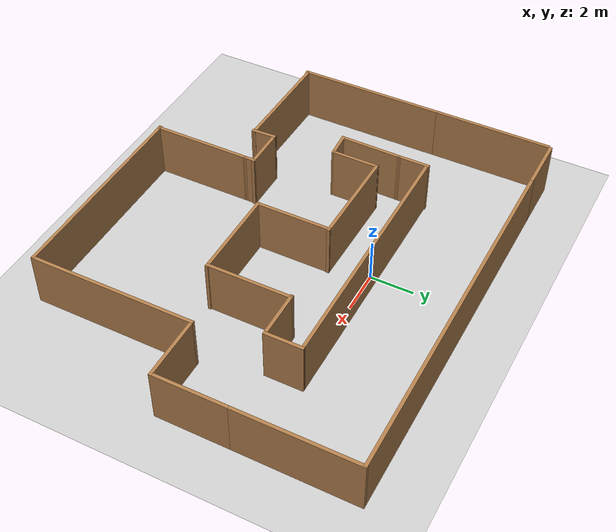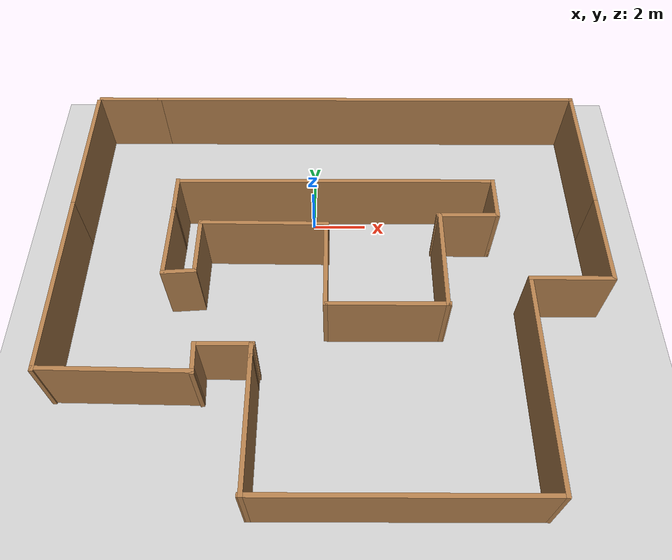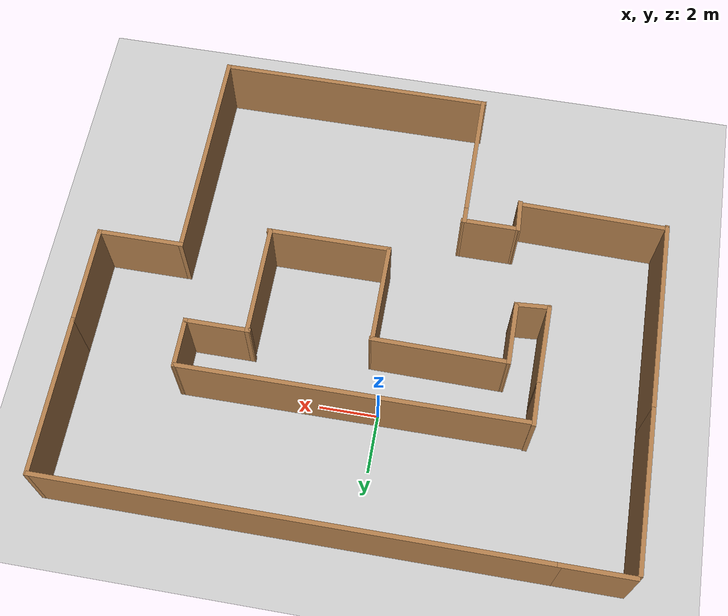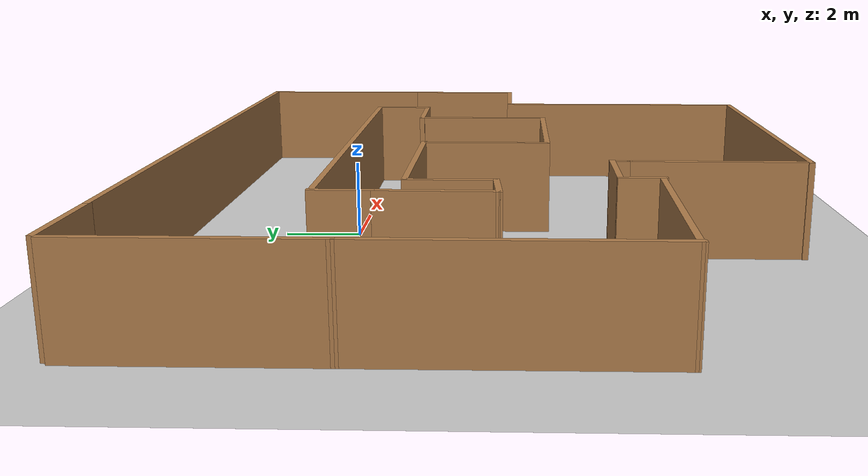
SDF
<sdf version="1.6">
 <world name="default">
  <light name="sun" type="directional">
   <pose>0 0 10 0 -0 0</pose>
   <diffuse>0.8 0.8 0.8 1</diffuse>
   <specular>0.2 0.2 0.2 1</specular>
   <attenuation>
    <range>1000</range>
    <constant>0.9</constant>
    <linear>0.01</linear>
    <quadratic>0.001</quadratic>
   </attenuation>
   <direction>-0.5 0.1 -0.9</direction>
  </light>
  <model name="ground_plane">
   <static>1</static>
   <link name="link">
    <collision name="collision">
     <geometry><plane><normal>0 0 1</normal><size>100 100</size></plane></geometry>
     <surface>
      <contact><collide_bitmask>65535</collide_bitmask></contact>
      <friction><ode><mu>100</mu><mu2>50</mu2></ode></friction>
     </surface>
    </collision>
    <visual name="visual">
     <cast_shadows>0</cast_shadows>
     <geometry><plane><normal>0 0 1</normal><size>100 100</size></plane></geometry>
     <material>
      <script><uri>file://media/materials/scripts/gazebo.material</uri><name>Gazebo/Grey</name></script>
     </material>
    </visual>
   </link>
  </model>
  <gravity>0 0 -9.8</gravity>
  <magnetic_field>6e-06 2.3e-05 -4.2e-05</magnetic_field>
  <atmosphere type="adiabatic"/>
  <physics name="default_physics" default="0" type="ode">
   <max_step_size>0.001</max_step_size>
   <real_time_factor>1</real_time_factor>
   <real_time_update_rate>1000</real_time_update_rate>
  </physics>
  <scene><ambient>0.4 0.4 0.4 1</ambient><background>0.7 0.7 0.7 1</background><shadows>1</shadows></scene>
  <spherical_coordinates>
   <surface_model>EARTH_WGS84</surface_model>
   <latitude_deg>0</latitude_deg>
   <longitude_deg>0</longitude_deg>
   <elevation>0</elevation>
   <heading_deg>0</heading_deg>
  </spherical_coordinates>
  <model name="maze.world">
   <pose>0.799782 -3.46001 0 0 -0 0</pose>
   <link name="Wall_1">
    <collision name="Wall_1_Collision">
     <geometry><box><size>6.84196 0.15 2.5</size></box></geometry>
     <pose>0 0 1.25 0 -0 0</pose>
    </collision>
    <visual name="Wall_1_Visual">
     <pose>0 0 1.25 0 -0 0</pose>
     <geometry><box><size>6.84196 0.15 2.5</size></box></geometry>
     <material>
      <script><uri>file://media/materials/scripts/gazebo.material</uri><name>Gazebo/Wood</name></script>
      <ambient>1 1 1 1</ambient>
     </material>
     <meta><layer>0</layer></meta>
    </visual>
    <pose>-9.53199 -0.763433 0 0 -0 -1.56839</pose>
   </link>
   <link name="Wall_10">
    <collision name="Wall_10_Collision">
     <geometry><box><size>7.60947 0.15 2.5</size></box></geometry>
     <pose>0 0 1.25 0 -0 0</pose>
    </collision>
    <visual name="Wall_10_Visual">
     <pose>0 0 1.25 0 -0 0</pose>
     <geometry><box><size>7.60947 0.15 2.5</size></box></geometry>
     <material>
      <script><uri>file://media/materials/scripts/gazebo.material</uri><name>Gazebo/Wood</name></script>
      <ambient>1 1 1 1</ambient>
     </material>
     <meta><layer>0</layer></meta>
    </visual>
    <pose>6.69022 -4.33965 0 0 -0 1.5708</pose>
   </link>
   <link name="Wall_11">
    <collision name="Wall_11_Collision">
     <geometry><box><size>3 0.15 2.5</size></box></geometry>
     <pose>0 0 1.25 0 -0 0</pose>
    </collision>
    <visual name="Wall_11_Visual">
     <pose>0 0 1.25 0 -0 0</pose>
     <geometry><box><size>3 0.15 2.5</size></box></geometry>
     <material>
      <script><uri>file://media/materials/scripts/gazebo.material</uri><name>Gazebo/Wood</name></script>
      <ambient>1 1 1 1</ambient>
     </material>
     <meta><layer>0</layer></meta>
    </visual>
    <pose>8.11522 -0.609985 0 0 -0 0</pose>
   </link>
   <link name="Wall_12">
    <collision name="Wall_12_Collision">
     <geometry><box><size>3.5 0.15 2.5</size></box></geometry>
     <pose>0 0 1.25 0 -0 0</pose>
    </collision>
    <visual name="Wall_12_Visual">
     <pose>0 0 1.25 0 -0 0</pose>
     <geometry><box><size>3.5 0.15 2.5</size></box></geometry>
     <material>
      <script><uri>file://media/materials/scripts/gazebo.material</uri><name>Gazebo/Wood</name></script>
      <ambient>1 1 1 1</ambient>
     </material>
     <meta><layer>0</layer></meta>
    </visual>
    <pose>9.54022 1.06502 0 0 -0 1.5708</pose>
   </link>
   <link name="Wall_14">
    <collision name="Wall_14_Collision">
     <geometry><box><size>5.47941 0.15 2.5</size></box></geometry>
     <pose>0 0 1.25 0 -0 0</pose>
    </collision>
    <visual name="Wall_14_Visual">
     <pose>0 0 1.25 0 -0 0</pose>
     <geometry><box><size>5.47941 0.15 2.5</size></box></geometry>
     <material>
      <script><uri>file://media/materials/scripts/gazebo.material</uri><name>Gazebo/Wood</name></script>
      <ambient>1 1 1 1</ambient>
     </material>
     <meta><layer>0</layer></meta>
    </visual>
    <pose>9.54022 5.40472 0 0 -0 1.5708</pose>
   </link>
   <link name="Wall_15">
    <collision name="Wall_15_Collision">
     <geometry><box><size>16.75 0.15 2.5</size></box></geometry>
     <pose>0 0 1.25 0 -0 0</pose>
    </collision>
    <visual name="Wall_15_Visual">
     <pose>0 0 1.25 0 -0 0</pose>
     <geometry><box><size>16.75 0.15 2.5</size></box></geometry>
     <material>
      <script><uri>file://media/materials/scripts/gazebo.material</uri><name>Gazebo/Wood</name></script>
      <ambient>1 1 1 1</ambient>
     </material>
     <meta><layer>0</layer></meta>
    </visual>
    <pose>1.19396 8.06943 0 0 -0 3.14159</pose>
   </link>
   <link name="Wall_18">
    <collision name="Wall_18_Collision">
     <geometry><box><size>2.89492 0.15 2.5</size></box></geometry>
     <pose>0 0 1.25 0 -0 0</pose>
    </collision>
    <visual name="Wall_18_Visual">
     <pose>0 0 1.25 0 -0 0</pose>
     <geometry><box><size>2.89492 0.15 2.5</size></box></geometry>
     <material>
      <script><uri>file://media/materials/scripts/gazebo.material</uri><name>Gazebo/Wood</name></script>
      <ambient>1 1 1 1</ambient>
     </material>
     <meta><layer>0</layer></meta>
    </visual>
    <pose>-5.86122 1.00719 0 0 -0 -1.58775</pose>
   </link>
   <link name="Wall_19">
    <collision name="Wall_19_Collision">
     <geometry><box><size>1.24161 0.15 2.5</size></box></geometry>
     <pose>0 0 1.25 0 -0 0</pose>
    </collision>
    <visual name="Wall_19_Visual">
     <pose>0 0 1.25 0 -0 0</pose>
     <geometry><box><size>1.24161 0.15 2.5</size></box></geometry>
     <material>
      <script><uri>file://media/materials/scripts/gazebo.material</uri><name>Gazebo/Wood</name></script>
      <ambient>1 1 1 1</ambient>
     </material>
     <meta><layer>0</layer></meta>
    </visual>
    <pose>-5.34003 -0.373254 0 0 -0 0.070302</pose>
   </link>
   <link name="Wall_2">
    <collision name="Wall_2_Collision">
     <geometry><box><size>5.21152 0.15 2.5</size></box></geometry>
     <pose>0 0 1.25 0 -0 0</pose>
    </collision>
    <visual name="Wall_2_Visual">
     <pose>0 0 1.25 0 -0 0</pose>
     <geometry><box><size>5.21152 0.15 2.5</size></box></geometry>
     <material>
      <script><uri>file://media/materials/scripts/gazebo.material</uri><name>Gazebo/Wood</name></script>
      <ambient>1 1 1 1</ambient>
     </material>
     <meta><layer>0</layer></meta>
    </visual>
    <pose>-6.9936 -4.10914 0 0 -0 -0.018281</pose>
   </link>
   <link name="Wall_20">
    <collision name="Wall_20_Collision">
     <geometry><box><size>2.1987 0.15 2.5</size></box></geometry>
     <pose>0 0 1.25 0 -0 0</pose>
    </collision>
    <visual name="Wall_20_Visual">
     <pose>0 0 1.25 0 -0 0</pose>
     <geometry><box><size>2.1987 0.15 2.5</size></box></geometry>
     <material>
      <script><uri>file://media/materials/scripts/gazebo.material</uri><name>Gazebo/Wood</name></script>
      <ambient>1 1 1 1</ambient>
     </material>
     <meta><layer>0</layer></meta>
    </visual>
    <pose>-4.79544 0.735959 0 0 -0 1.57067</pose>
   </link>
   <link name="Wall_21">
    <collision name="Wall_21_Collision">
     <geometry><box><size>4.633 0.15 2.5</size></box></geometry>
     <pose>0 0 1.25 0 -0 0</pose>
    </collision>
    <visual name="Wall_21_Visual">
     <pose>0 0 1.25 0 -0 0</pose>
     <geometry><box><size>4.633 0.15 2.5</size></box></geometry>
     <material>
      <script><uri>file://media/materials/scripts/gazebo.material</uri><name>Gazebo/Wood</name></script>
      <ambient>1 1 1 1</ambient>
     </material>
     <meta><layer>0</layer></meta>
    </visual>
    <pose>-2.50767 1.73718 0 0 -0 -0.010319</pose>
   </link>
   <link name="Wall_22">
    <collision name="Wall_22_Collision">
     <geometry><box><size>3.51171 0.15 2.5</size></box></geometry>
     <pose>0 0 1.25 0 -0 0</pose>
    </collision>
    <visual name="Wall_22_Visual">
     <pose>0 0 1.25 0 -0 0</pose>
     <geometry><box><size>3.51171 0.15 2.5</size></box></geometry>
     <material>
      <script><uri>file://media/materials/scripts/gazebo.material</uri><name>Gazebo/Wood</name></script>
      <ambient>1 1 1 1</ambient>
     </material>
     <meta><layer>0</layer></meta>
    </visual>
    <pose>-0.296705 0.033191 0 0 -0 -1.5708</pose>
   </link>
   <link name="Wall_23">
    <collision name="Wall_23_Collision">
     <geometry><box><size>4.25 0.15 2.5</size></box></geometry>
     <pose>0 0 1.25 0 -0 0</pose>
    </collision>
    <visual name="Wall_23_Visual">
     <pose>0 0 1.25 0 -0 0</pose>
     <geometry><box><size>4.25 0.15 2.5</size></box></geometry>
     <material>
      <script><uri>file://media/materials/scripts/gazebo.material</uri><name>Gazebo/Wood</name></script>
      <ambient>1 1 1 1</ambient>
     </material>
     <meta><layer>0</layer></meta>
    </visual>
    <pose>1.79956 -1.64766 0 0 -0 0</pose>
   </link>
   <link name="Wall_24">
    <collision name="Wall_24_Collision">
     <geometry><box><size>3.9173 0.15 2.5</size></box></geometry>
     <pose>0 0 1.25 0 -0 0</pose>
    </collision>
    <visual name="Wall_24_Visual">
     <pose>0 0 1.25 0 -0 0</pose>
     <geometry><box><size>3.9173 0.15 2.5</size></box></geometry>
     <material>
      <script><uri>file://media/materials/scripts/gazebo.material</uri><name>Gazebo/Wood</name></script>
      <ambient>1 1 1 1</ambient>
     </material>
     <meta><layer>0</layer></meta>
    </visual>
    <pose>3.80329 0.235985 0 0 -0 1.5708</pose>
   </link>
   <link name="Wall_25">
    <collision name="Wall_25_Collision">
     <geometry><box><size>2.23225 0.15 2.5</size></box></geometry>
     <pose>0 0 1.25 0 -0 0</pose>
    </collision>
    <visual name="Wall_25_Visual">
     <pose>0 0 1.25 0 -0 0</pose>
     <geometry><box><size>2.23225 0.15 2.5</size></box></geometry>
     <material>
      <script><uri>file://media/materials/scripts/gazebo.material</uri><name>Gazebo/Wood</name></script>
      <ambient>1 1 1 1</ambient>
     </material>
     <meta><layer>0</layer></meta>
    </visual>
    <pose>4.79816 2.11963 0 0 -0 0</pose>
   </link>
   <link name="Wall_26">
    <collision name="Wall_26_Collision">
     <geometry><box><size>1.75694 0.15 2.5</size></box></geometry>
     <pose>0 0 1.25 0 -0 0</pose>
    </collision>
    <visual name="Wall_26_Visual">
     <pose>0 0 1.25 0 -0 0</pose>
     <geometry><box><size>1.75694 0.15 2.5</size></box></geometry>
     <material>
      <script><uri>file://media/materials/scripts/gazebo.material</uri><name>Gazebo/Wood</name></script>
      <ambient>1 1 1 1</ambient>
     </material>
     <meta><layer>0</layer></meta>
    </visual>
    <pose>5.88555 2.9231 0 0 -0 1.5708</pose>
   </link>
   <link name="Wall_27">
    <collision name="Wall_27_Collision">
     <geometry><box><size>11.686 0.15 2.5</size></box></geometry>
     <pose>0 0 1.25 0 -0 0</pose>
    </collision>
    <visual name="Wall_27_Visual">
     <pose>0 0 1.25 0 -0 0</pose>
     <geometry><box><size>11.686 0.15 2.5</size></box></geometry>
     <material>
      <script><uri>file://media/materials/scripts/gazebo.material</uri><name>Gazebo/Wood</name></script>
      <ambient>1 1 1 1</ambient>
     </material>
     <meta><layer>0</layer></meta>
    </visual>
    <pose>0.071291 3.71136 0 0 -0 -3.13896</pose>
   </link>
   <link name="Wall_29">
    <collision name="Wall_29_Collision">
     <geometry><box><size>1.5 0.15 2.5</size></box></geometry>
     <pose>0 0 1.25 0 -0 0</pose>
    </collision>
    <visual name="Wall_29_Visual">
     <pose>0 0 1.25 0 -0 0</pose>
     <geometry><box><size>1.5 0.15 2.5</size></box></geometry>
     <material>
      <script><uri>file://media/materials/scripts/gazebo.material</uri><name>Gazebo/Wood</name></script>
      <ambient>1 1 1 1</ambient>
     </material>
     <meta><layer>0</layer></meta>
    </visual>
    <pose>-5.83796 3.05445 0 0 -0 1.5708</pose>
   </link>
   <link name="Wall_3">
    <collision name="Wall_3_Collision">
     <geometry><box><size>1.17225 0.15 2.5</size></box></geometry>
     <pose>0 0 1.25 0 -0 0</pose>
    </collision>
    <visual name="Wall_3_Visual">
     <pose>0 0 1.25 0 -0 0</pose>
     <geometry><box><size>1.17225 0.15 2.5</size></box></geometry>
     <material>
      <script><uri>file://media/materials/scripts/gazebo.material</uri><name>Gazebo/Wood</name></script>
      <ambient>1 1 1 1</ambient>
     </material>
     <meta><layer>0</layer></meta>
    </visual>
    <pose>-4.48665 -3.69134 0 0 -0 1.61658</pose>
   </link>
   <link name="Wall_31">
    <collision name="Wall_31_Collision">
     <geometry><box><size>5.5 0.15 2.5</size></box></geometry>
     <pose>0 0 1.25 0 -0 0</pose>
    </collision>
    <visual name="Wall_31_Visual">
     <pose>0 0 1.25 0 -0 0</pose>
     <geometry><box><size>5.5 0.15 2.5</size></box></geometry>
     <material>
      <script><uri>file://media/materials/scripts/gazebo.material</uri><name>Gazebo/Wood</name></script>
      <ambient>1 1 1 1</ambient>
     </material>
     <meta><layer>0</layer></meta>
    </visual>
    <pose>-9.54004 5.25754 0 0 -0 1.5708</pose>
   </link>
   <link name="Wall_33">
    <collision name="Wall_33_Collision">
     <geometry><box><size>2.5 0.15 2.5</size></box></geometry>
     <pose>0 0 1.25 0 -0 0</pose>
    </collision>
    <visual name="Wall_33_Visual">
     <pose>0 0 1.25 0 -0 0</pose>
     <geometry><box><size>2.5 0.15 2.5</size></box></geometry>
     <material>
      <script><uri>file://media/materials/scripts/gazebo.material</uri><name>Gazebo/Wood</name></script>
      <ambient>1 1 1 1</ambient>
     </material>
     <meta><layer>0</layer></meta>
    </visual>
    <pose>-8.28104 8.06943 0 0 -0 3.14159</pose>
   </link>
   <link name="Wall_4">
    <collision name="Wall_4_Collision">
     <geometry><box><size>2 0.15 2.5</size></box></geometry>
     <pose>0 0 1.25 0 -0 0</pose>
    </collision>
    <visual name="Wall_4_Visual">
     <pose>0 0 1.25 0 -0 0</pose>
     <geometry><box><size>2 0.15 2.5</size></box></geometry>
     <material>
      <script><uri>file://media/materials/scripts/gazebo.material</uri><name>Gazebo/Wood</name></script>
      <ambient>1 1 1 1</ambient>
     </material>
     <meta><layer>0</layer></meta>
    </visual>
    <pose>-3.53852 -3.18075 0 0 -0 0</pose>
   </link>
   <link name="Wall_6">
    <collision name="Wall_6_Collision">
     <geometry><box><size>0.579239 0.15 2.5</size></box></geometry>
     <pose>0 0 1.25 0 -0 0</pose>
    </collision>
    <visual name="Wall_6_Visual">
     <pose>0 0 1.25 0 -0 0</pose>
     <geometry><box><size>0.579239 0.15 2.5</size></box></geometry>
     <material>
      <script><uri>file://media/materials/scripts/gazebo.material</uri><name>Gazebo/Wood</name></script>
      <ambient>1 1 1 1</ambient>
     </material>
     <meta><layer>0</layer></meta>
    </visual>
    <pose>-2.65991 -3.39537 0 0 -0 -1.57018</pose>
   </link>
   <link name="Wall_8">
    <collision name="Wall_8_Collision">
     <geometry><box><size>4.60956 0.15 2.5</size></box></geometry>
     <pose>0 0 1.25 0 -0 0</pose>
    </collision>
    <visual name="Wall_8_Visual">
     <pose>0 0 1.25 0 -0 0</pose>
     <geometry><box><size>4.60956 0.15 2.5</size></box></geometry>
     <material>
      <script><uri>file://media/materials/scripts/gazebo.material</uri><name>Gazebo/Wood</name></script>
      <ambient>1 1 1 1</ambient>
     </material>
     <meta><layer>0</layer></meta>
    </visual>
    <pose>-2.65978 -5.83965 0 0 -0 -1.5708</pose>
   </link>
   <link name="Wall_9">
    <collision name="Wall_9_Collision">
     <geometry><box><size>9.5 0.15 2.5</size></box></geometry>
     <pose>0 0 1.25 0 -0 0</pose>
    </collision>
    <visual name="Wall_9_Visual">
     <pose>0 0 1.25 0 -0 0</pose>
     <geometry><box><size>9.5 0.15 2.5</size></box></geometry>
     <material>
      <script><uri>file://media/materials/scripts/gazebo.material</uri><name>Gazebo/Wood</name></script>
      <ambient>1 1 1 1</ambient>
     </material>
     <meta><layer>0</layer></meta>
    </visual>
    <pose>1.96896 -8.06931 0 0 -0 0</pose>
   </link>
   <static>1</static>
  </model>
 </world>
</sdf>
